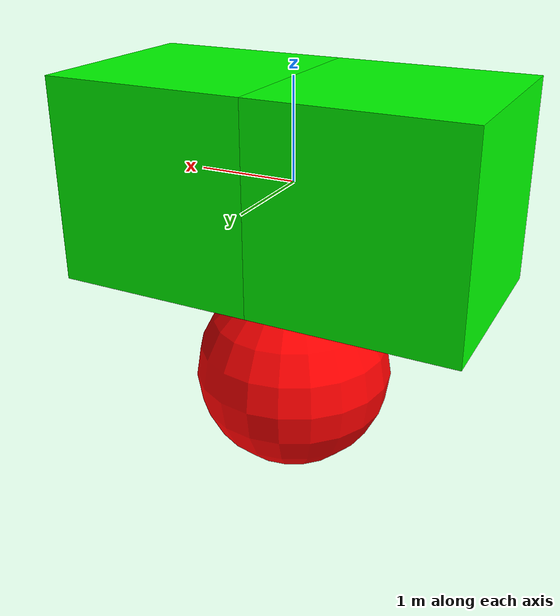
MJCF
<mujoco model="child">
  <worldbody>
    <body name="body">
      <geom name="geom" size="1" pos="0 0 -2" rgba="1 0 0 1"/>
    </body>

    <frame name="frame">
      <body name="body2" pos="-1 0 0">
        <freejoint/>
        <geom name="geom2" type="box" size="1 1 1" rgba="0 1 0 1"/>
      </body>
      <body name="body3" pos="1 0 0">
        <freejoint/>
        <geom name="geom3" type="box" size="1 1 1" rgba="0 1 0 1"/>
      </body>
    </frame>
  </worldbody>
</mujoco>
